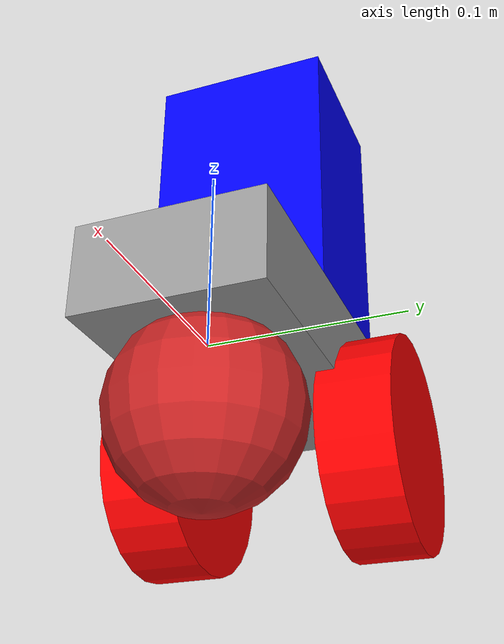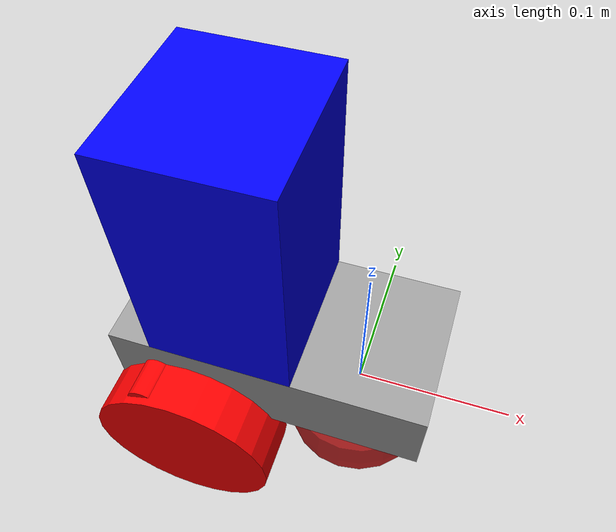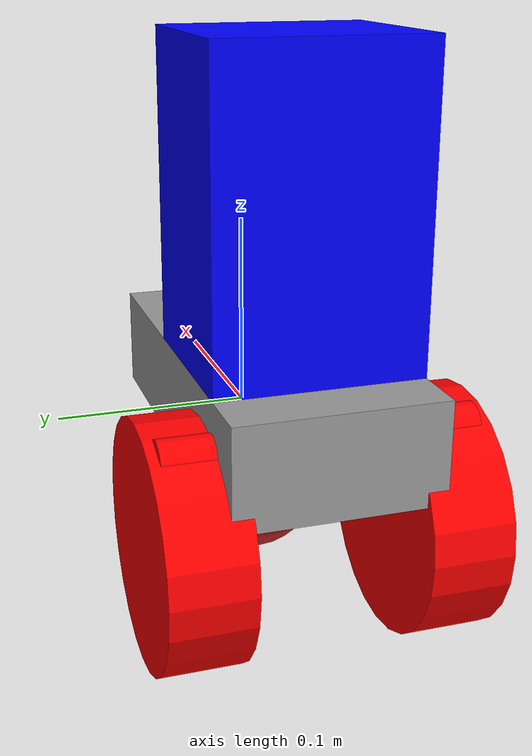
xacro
<?xml version="1.0"?>
<robot xmlns:xacro="http://www.ros.org/wiki/xacro"  name="robot">

    <xacro:include filename="inertial_macros.xacro"/>

    <material name = "red">
        <color rgba = "1 0 0 1"/>
    </material>

    <material name = "green">
        <color rgba = "0 1 0 1"/>
    </material>

    <material name = "blue">
        <color rgba = "0 0 1 1"/>
    </material>

    <material name = "grey">
        <color rgba = "0.6 0.6 0.6 1" />
    </material>

    <link name = "base_link">

    </link>

    <joint name = "base_link_joint" type = "fixed">
        <parent link = "base_link"/>
        <child link = "chassis"/>
        <origin xyz = "-0.1 0 0"/>
    </joint>

    <link name = "chassis">
        <visual>
            <origin xyz = "0.05 0 0.025"/>
            <geometry>
                <box size = "0.2 0.10 0.05"/>
            </geometry>
            <material name = "grey" />
        </visual>
        <collision>
            <origin xyz = "0.05 0 0.025" />
            <geometry>
                <box size = "0.2 0.10 0.05"/>
            </geometry>
        </collision>
        <xacro:inertial_box mass = "0.05" x = "0.2" y="0.1" z="0.05" >
            <origin xyz = "0.05 0 0.025" />
        </xacro:inertial_box>
    </link>

    <joint name = "base_footprint_joint" type = "fixed">
        <parent link = "base_link"/>
        <child link = "base_footprint"/>
        <origin xyz = "0 0 0"/>
    </joint>

    <link name = "base_footprint">

    </link>

    <joint name = "column_joint" type = "fixed">
        <parent link = "chassis"/>
        <child link = "column_link"/>
        <origin xyz = "0.02 0 0.05"/>
    </joint>

    <link name = "column_link">
        <visual>
            <origin xyz="0.003 0 0.075"/>
            <geometry>
                <box size = "0.09 0.10 0.15"/>
            </geometry>
            <material name = "blue"/>
        </visual>
        <collision>
            <origin xyz = "0 0 0.075"/>
            <geometry>
                <box size = "0.09 0,10 0.15"/>
            </geometry>
        </collision>
        <xacro:inertial_box mass = "0.04" x = "0.09" y="0.10" z="0.15">
            <origin xyz = "0.003 0 0.075"/>
        </xacro:inertial_box>
    </link>

    <joint name = "wheel_joint" type = "fixed">
        <parent link = "chassis"/>
        <child link = "wheel_link"/>
        <origin xyz = "-0.02 0 0.025" rpy = "-${pi/2} 0 0"/>
        <axis xyz = "0 0 1" />
    </joint>

    <link name = "wheel_link">
        <visual>
            <geometry>
                <cylinder radius = "0.01" length = "0.15"/>
            </geometry>
            <material name = "red" />
        </visual>
        <collision>
            <geometry>
                <cylinder radius = "0.01" length = "0.15"/>
            </geometry>
        </collision>
        <xacro:inertial_cylinder mass = "0.03" radius = "0.07" length = "0.04">
            <origin xyz = "0 0 0" rpy = "0 0 0" />
        </xacro:inertial_cylinder>
    </link>

    <joint name = "left_wheel_joint" type = "continuous">
        <parent link = "chassis"/>
        <child link = "left_wheel"/>
        <origin xyz = "0 0.06 -0.025" rpy = "-${pi/2} 0 0"/>
        <axis xyz = "0 0 1" />
    </joint>

    <link name = "left_wheel">
        <visual>
            <geometry>
                <cylinder radius = "0.06" length = "0.04"/>
            </geometry>
            <material name = "red" />
        </visual>
        <collision>
            <geometry>
                <cylinder radius = "0.06" length = "0.04"/>
            </geometry>
        </collision>
        <xacro:inertial_cylinder mass = "0.1" radius = "0.06" length = "0.04">
            <origin xyz = "0 0 0" rpy = "0 0 0" />
        </xacro:inertial_cylinder>
    </link>

    <joint name = "right_wheel_joint" type = "continuous">
        <parent link = "chassis"/>
        <child link = "right_wheel"/>
        <origin xyz = "0 -0.06 -0.025" rpy = "-${pi/2} 0 0"/>
        <axis xyz = "0 0 1" />
    </joint>

    <link name = "right_wheel">
        <visual>
            <geometry>
                <cylinder radius = "0.06" length = "0.04"/>
            </geometry>
            <material name = "red" />
        </visual>
        <collision>
            <geometry>
                <cylinder radius = "0.06" length = "0.04"/>
            </geometry>
        </collision>
        <xacro:inertial_cylinder mass = "0.1" radius = "0.06" length = "0.04">
            <origin xyz = "0 0 0" rpy = "0 0 0" />
        </xacro:inertial_cylinder>
    </link>

    <joint name = "caster_wheel_joint" type = "fixed">
        <parent link = "chassis"/>
        <child link = "caster_wheel"/>
        <origin xyz = "0.1 0 -0.035"/>
    </joint>

    <link name = "caster_wheel" >
        <visual>
            <geometry>
                <sphere radius = "0.05" />
            </geometry>
        </visual>
        <collision>
            <geometry>
                <sphere radius = "0.05" />
            </geometry>
        </collision>
        <xacro:inertial_sphere mass = "0.5" radius = "0.05">
            <origin xyz = "0 0 0" rpy = "0 0 0"/>
        </xacro:inertial_sphere>
    </link>

    <gazebo reference="caster_wheel">
        <material>Gazebo/Red</material>
        <mu1 value="0.01" />
        <mu2 value="0.01" />
    </gazebo>

    <gazebo reference="chassis">
        <material>Gazebo/White</material>
    </gazebo>

    <gazebo reference="left_wheel">
        <material>Gazebo/Red</material>
    </gazebo>

    <gazebo reference = "right_wheel">
        <material>Gazebo/Red</material>
    </gazebo>

    <gazebo reference = "column_link">
        <material>Gazebo/Blue</material>
    </gazebo>

</robot>
